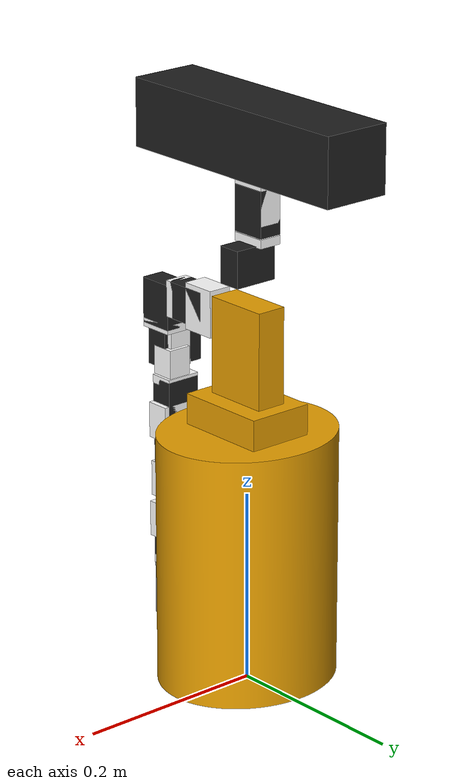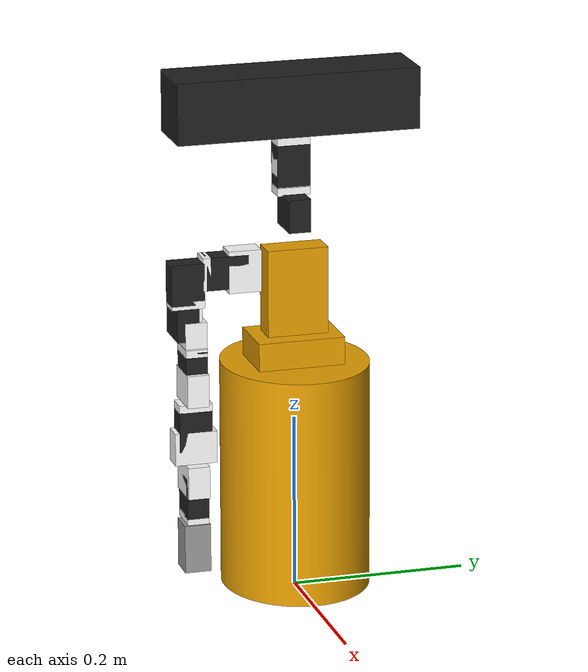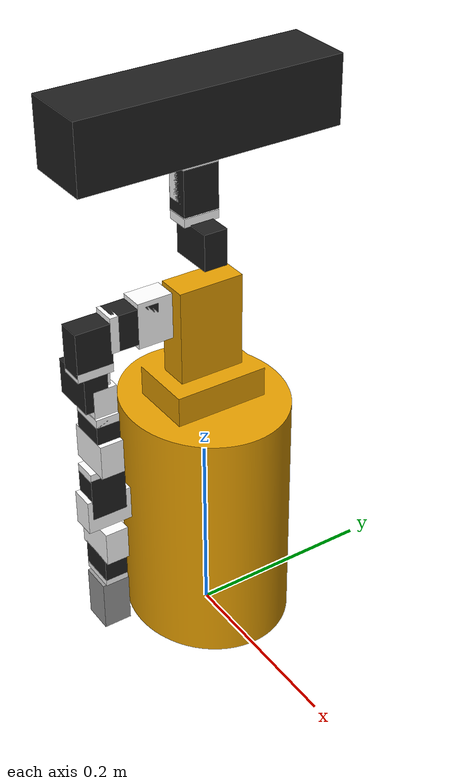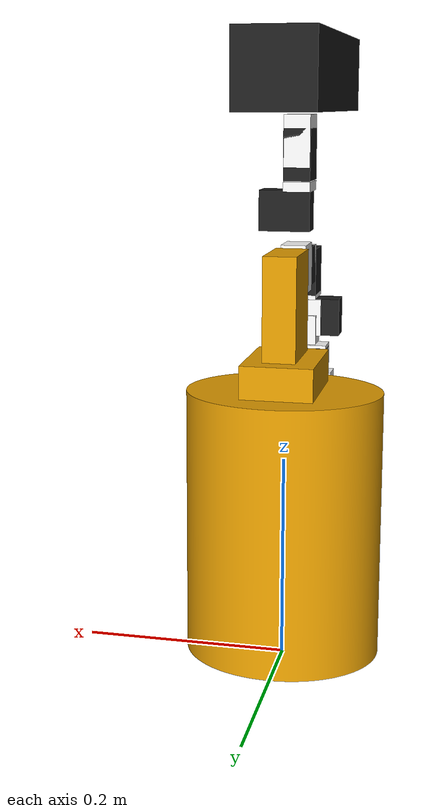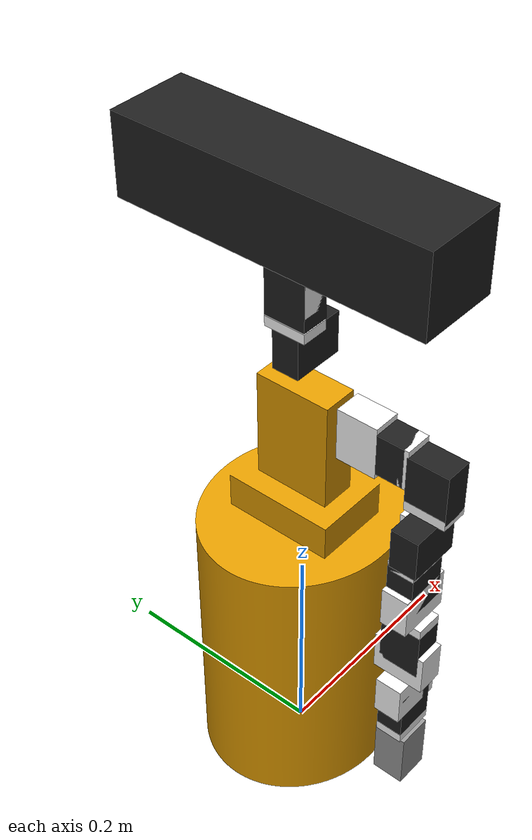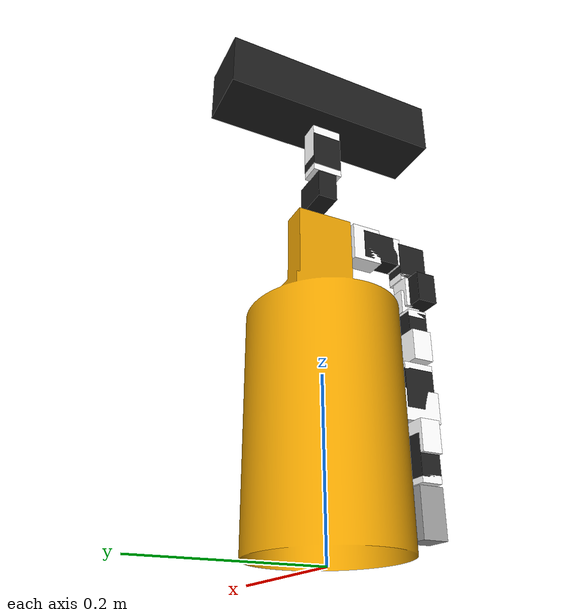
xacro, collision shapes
<?xml version="1.0"?>

<robot name="pedestal_pi_no_gripper" xmlns:xacro="http://ros.org/wiki/xacro">

  <property name="BASE_MESH_SCALE" value="1.0"/>
  <property name="BASE_MESH_COLLISION_SCALE" value="0.0254"/>

  <property name="MESH_SCALE" value="0.001"/>
  <property name="MESH_COLLISION_SCALE" value="0.00105"/>
  <property name="BASE_THICKNESS" value="0.004" />
  <property name="LOWER_BASE_HEIGHT" value="0.26" />
  <property name="LOWER_BASE_RADIUS" value="0.075" />

  <material name="Green">
    <color rgba="0.0 0.8 0.0 1.0"/>
  </material>

  <material name="OffWhite">
    <color rgba="0.8 0.8 0.8 0.9"/>
  </material>

  <material name="White">
    <color rgba="1.0 1.0 1.0 1.0"/>
  </material>

  <material name="DarkGray">
     <color rgba="0.3 0.3 0.3 1.0"/>
  </material>

  <material name="LightGray">
     <color rgba="0.6 0.6 0.6 1.0"/>
  </material>

  <material name="Red">
     <color rgba="1.0 0.0 0.0 0.5"/>
  </material>

  <xacro:include filename="$(find rbx2_description)/urdf/pedestal_pi/pedestal_pi_pan_tilt_head.urdf.xacro" />
  <xacro:include filename="$(find rbx2_description)/urdf/pedestal_pi/pedestal_pi_arm_paddle_hand.urdf.xacro" />

  <link name="base_link">
    <visual>
      <origin xyz="0 0 0" rpy="0 0 1.57" />
      <geometry>
          <mesh filename="package://rbx2_description/meshes/pedestal_pi/pedestal_pi.dae" scale="${BASE_MESH_SCALE} ${BASE_MESH_SCALE} ${BASE_MESH_SCALE}"/>
      </geometry>
    </visual>

    <collision>
      <origin xyz="0 0 0" rpy="0 0 1.57" />
       <geometry>
          <mesh filename="package://rbx2_description/meshes/pedestal_pi/pedestal_pi_collision.dae" scale="${BASE_MESH_COLLISION_SCALE} ${BASE_MESH_COLLISION_SCALE} ${BASE_MESH_COLLISION_SCALE}"/>
       </geometry>
     </collision>

   </link>

   <link name="base_footprint">
      <visual>
        <origin xyz="0 0 0" rpy="0 0 0" />
        <geometry>
          <box size="0.05 0.05 0.001" />
        </geometry>
        <material name="TransparentGreen" />
      </visual>
   </link>

   <joint name="base_joint" type="fixed">
     <origin xyz="0 0 ${BASE_THICKNESS}" rpy="0 0 0" />
     <parent link="base_footprint"/>
     <child link="base_link" />
   </joint>

   <!-- Attach the head -->
   <head name="head_base" parent="base" color="White">
     <origin xyz="-${AX12_DEPTH/4} 0 0.438" rpy="${PI/2} 0 ${PI/2}" />
   </head>

   <!-- Attach the right arm -->
   <arm side="right" reflect="-1" parent="base" color="White">
     <origin xyz="0 -0.068 ${AX12_HEIGHT + 0.3375}" rpy="0 0 1.57" />
   </arm>

</robot>

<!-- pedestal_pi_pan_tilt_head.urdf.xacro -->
<robot name="pan_tilt_head" xmlns:xacro="http://ros.org/wiki/xacro">

  <property name="camera_offset_x" value="0.0" />
  <property name="camera_offset_y" value="0.0" />
  <property name="camera_offset_z" value="0.0615" />

  <property name="camera_mesh_scale" value="1.0" />

  <xacro:include filename="$(find rbx2_description)/urdf/pi_robot/dynamixel_head_hardware.xacro" />
  <xacro:include filename="$(find rbx2_description)/urdf/pi_robot/kinect.urdf.xacro" />

  <macro name="head" params="parent name color *origin">
    <!-- head base joint -->
    <joint name="${name}_joint" type="fixed">
      <xacro:insert_block name="origin" />
      <parent link="${parent}_link"/>
      <child link="${name}_link" />
    </joint>
    <link name="${name}_link">
      <origin xyz="0 0 0" rpy="0 0 0" />
      <inertial>
        <mass value="0.00001" />
        <inertia ixx="1.0" ixy="0.0" ixz="0.0"
          iyy="1.0" iyz="0.0"
          izz="1.0" />
      </inertial>

      <visual>
        <origin xyz="0 0 0 " rpy="0 0 0" />
        <geometry>
           <cylinder length="0.00001" radius="0.01" />
        </geometry>
      </visual>

      <collision>
        <origin xyz="0 0 0 " rpy="0 0 0" />
        <geometry>
           <cylinder length="0.00001" radius="0.01" />
        </geometry>
      </collision>
    </link>

    <!-- head pan joint -->
    <dynamixel_AX12_fixed parent="head_base" name="head_pan_servo">
       <origin xyz="0 0 0" rpy="0 ${PI} 0" />
    </dynamixel_AX12_fixed>

    <bioloid_F3_head_revolute parent="head_pan_servo" name="head_pan_bracket" joint_name="head_pan" ulimit="2.9" llimit="-2.9" vlimit="1.571" color="${color}">
       <origin xyz="0 ${AX12_WIDTH/2 + 0.005} 0" rpy="${-PI/2} ${PI/2} ${PI}" />
    </bioloid_F3_head_revolute>

    <!--head tilt joint -->
    <dynamixel_AX12_fixed parent="head_pan_bracket" name="head_tilt_servo">
       <origin xyz="0 0 ${-AX12_HEIGHT-F10_HEIGHT+0.001}" rpy="0 ${PI} ${PI}"/>
    </dynamixel_AX12_fixed>

    <bioloid_F2_head_revolute parent="head_tilt_servo" name="head_tilt_bracket" joint_name="head_tilt" ulimit="2.9" llimit="-2.9" vlimit="1.571" color="${color}" >
       <origin xyz="0 0 0" rpy="0 0 0" />
    </bioloid_F2_head_revolute>

   <!-- Attach the camera -->
   <camera name="camera" parent="head_tilt_bracket" color="Black">
      <origin xyz="${camera_offset_x} ${camera_offset_y} ${camera_offset_z}" rpy="0 0 0" />
   </camera>

 </macro>

</robot>

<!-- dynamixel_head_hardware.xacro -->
<robot name="head_hardware" xmlns:xacro="http://ros.org/wiki/xacro">

  <property name="PI" value="3.14159"/>
  <property name="DYNAMIXEL_MESH_SCALE" value="0.001"/>

  <property name="F10_HEIGHT" value="0.004"/>

  <property name="F4_WIDTH" value="0.0480"/>
  <property name="F4_HEIGHT" value="0.0625"/>
  <property name="F4_DEPTH" value="0.0245"/>

  <property name="F2_DEPTH" value="0.0245"/>
  <property name="F2_WIDTH" value="0.0480"/>
  <property name="F2_HEIGHT" value="0.0380"/>

  <property name="F3_WIDTH" value="0.038"/>
  <property name="F3_HEIGHT" value="0.009"/>
  <property name="F3_DEPTH" value="0.025"/>

  <property name="AX12_HEIGHT" value="0.0385"/>
  <property name="AX12_WIDTH" value="0.035"/>
  <property name="AX12_DEPTH" value="0.049"/>

  <macro name="bioloid_F10_fixed" params="parent name color *origin">
    <joint name="${name}_joint" type="fixed">
      <xacro:insert_block name="origin"/>
      <parent link="${parent}_link"/>
      <child link="${name}_link" />
    </joint>

    <link name="${name}_link">
      <inertial>
        <mass value="0.00001" />
        <origin xyz="0 0 0" />
        <inertia ixx="1.0" ixy="0.0" ixz="0.0"
          iyy="1.0" iyz="0.0"
          izz="1.0" />
      </inertial>

      <visual>
        <origin xyz="0 0 0 " rpy="0 0 0" />
        <geometry>
          <mesh filename="package://rbx2_description/meshes/F10.stl" scale="${DYNAMIXEL_MESH_SCALE} ${DYNAMIXEL_MESH_SCALE} ${DYNAMIXEL_MESH_SCALE}"/>
        </geometry>
        <material name="${color}"/>
      </visual>

      <collision>
        <origin xyz="0 0 0" rpy="0 0 0" />
        <geometry>
          <box size="0.025 0.038 0.004"/>
        </geometry>
      </collision>
    </link>
  </macro>

  <macro name="bioloid_F3_fixed" params="parent name color *origin">
    <joint name="${name}_joint" type="fixed">
      <xacro:insert_block name="origin"/>
      <parent link="${parent}_link"/>
      <child link="${name}_link" />
    </joint>

    <link name="${name}_link">
      <inertial>
        <mass value="0.00001" />
        <origin xyz="0 0 0" />
        <inertia ixx="1.0" ixy="0.0" ixz="0.0"
          iyy="1.0" iyz="0.0"
          izz="1.0" />
      </inertial>

      <visual>
        <origin xyz="0 0 0 " rpy="0 0 0" />
        <geometry>
          <mesh filename="package://rbx2_description/meshes/F3.stl" scale="${DYNAMIXEL_MESH_SCALE} ${DYNAMIXEL_MESH_SCALE} ${DYNAMIXEL_MESH_SCALE}"/>
        </geometry>
        <material name="${color}"/>
      </visual>

      <collision>
        <origin xyz="0 0 0" rpy="0 0 0" />
        <geometry>
          <box size="${F3_WIDTH} ${F3_HEIGHT} ${F3_DEPTH}"/>
        </geometry>
      </collision>
    </link>
  </macro>

  <macro name="dynamixel_AX12_fixed" params="parent name *origin">
    <joint name="${name}_joint" type="fixed">
      <xacro:insert_block name="origin" />
      <parent link="${parent}_link"/>
      <child link="${name}_link" />
    </joint>

    <link name="${name}_link">
      <inertial>
        <mass value="0.00001" />
        <origin xyz="0 0 0" />
        <inertia ixx="1.0" ixy="0.0" ixz="0.0"
          iyy="1.0" iyz="0.0"
          izz="1.0" />
      </inertial>

      <visual>
        <origin xyz="0 0 0 " rpy="0 0 0" />
        <geometry>
          <mesh filename="package://rbx2_description/meshes/ax12.stl" scale="${DYNAMIXEL_MESH_SCALE} ${DYNAMIXEL_MESH_SCALE} ${DYNAMIXEL_MESH_SCALE}"/>
        </geometry>
        <material name="Black"/>
      </visual>

      <collision>
        <origin xyz="0 0 -0.01241" rpy="0 0 0" />
        <geometry>
          <box size="${AX12_HEIGHT} ${AX12_WIDTH} ${AX12_DEPTH}"/>
        </geometry>
      </collision>
    </link>
  </macro>

  <macro name="bioloid_F3_head_revolute" params="parent name joint_name ulimit llimit vlimit color *origin">
    <joint name="${joint_name}_joint" type="revolute">
      <xacro:insert_block name="origin" />
      <parent link="${parent}_link"/>
       <axis xyz="0 0 -1"/>
       <limit lower="${llimit}" upper="${ulimit}" velocity="${vlimit}" effort="1.0" />
      <child link="${name}_link" />
    </joint>

    <link name="${name}_link">
      <inertial>
        <mass value="0.00001" />
        <origin xyz="0 0 0" />
        <inertia ixx="1.0" ixy="0.0" ixz="0.0"
          iyy="1.0" iyz="0.0"
          izz="1.0" />
      </inertial>

      <visual>
        <origin xyz="0 0 0 " rpy="0 0 0" />
        <geometry>
          <mesh filename="package://rbx2_description/meshes/F3.stl" scale="${DYNAMIXEL_MESH_SCALE} ${DYNAMIXEL_MESH_SCALE} ${DYNAMIXEL_MESH_SCALE}"/>
        </geometry>
        <material name="${color}"/>
      </visual>

      <collision>
        <origin xyz="0 0 0" rpy="0 0 0" />
        <geometry>
           <box size="${F3_DEPTH} ${F3_WIDTH} ${F3_HEIGHT}"/>
        </geometry>
      </collision>
    </link>
  </macro>

  <macro name="bioloid_F4_head_revolute" params="parent name joint_name ulimit llimit vlimit color *origin">
    <joint name="${joint_name}_joint" type="revolute">
      <xacro:insert_block name="origin"/>
      <parent link="${parent}_link"/>
      <axis xyz="0 -1 0"/>
      <limit lower="${llimit}" upper="${ulimit}" velocity="${vlimit}" effort="1.0" />
      <child link="${name}_link" />
    </joint>

    <link name="${name}_link">
      <inertial>
        <mass value="0.00001" />
        <origin xyz="0 0 0" />
        <inertia ixx="1.0" ixy="0.0" ixz="0.0"
          iyy="1.0" iyz="0.0"
          izz="1.0" />
      </inertial>

      <visual>
        <origin xyz="0 0 0 " rpy="0 0 0" />
        <geometry>
          <mesh filename="package://rbx2_description/meshes/F4.stl" scale="${DYNAMIXEL_MESH_SCALE} ${DYNAMIXEL_MESH_SCALE} ${DYNAMIXEL_MESH_SCALE}"/>
        </geometry>
        <material name="${color}"/>
      </visual>

      <collision>
        <origin xyz="0 0 0" rpy="0 0 0" />
        <geometry>
          <box size="${F4_WIDTH} ${F4_HEIGHT} ${F4_DEPTH}"/>
        </geometry>
      </collision>
    </link>
  </macro>

  <macro name="bioloid_F2_head_revolute" params="parent name joint_name ulimit llimit vlimit color *origin">
    <joint name="${joint_name}_joint" type="revolute">
      <xacro:insert_block name="origin" />
      <parent link="${parent}_link"/>
      <axis xyz="0 1 0"/>
      <limit lower="${llimit}" upper="${ulimit}" velocity="${vlimit}" effort="1.0" />
      <child link="${name}_link" />
    </joint>

    <link name="${name}_link">
      <inertial>
        <mass value="0.00001" />
        <origin xyz="0 0 0" />
        <inertia ixx="1.0" ixy="0.0" ixz="0.0"
          iyy="1.0" iyz="0.0"
          izz="1.0" />
      </inertial>

      <visual>
        <origin xyz="0 0 0 " rpy="0 0 0" />
        <geometry>
          <mesh filename="package://rbx2_description/meshes/F2.stl" scale="${DYNAMIXEL_MESH_SCALE} ${DYNAMIXEL_MESH_SCALE} ${DYNAMIXEL_MESH_SCALE}"/>
        </geometry>
        <material name="${color}"/>
      </visual>

      <collision>
        <origin xyz="0 0 0" rpy="0 0 0" />
        <geometry>
          <box size="${F2_DEPTH} ${F2_HEIGHT} ${F2_WIDTH}"/>
        </geometry>
      </collision>
    </link>
  </macro>

</robot>

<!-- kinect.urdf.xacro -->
<robot name="kinect" xmlns:xacro="http://ros.org/wiki/xacro">

   <!-- Define a number of dimensions using properties -->
   <property name="kinect_size_x" value="0.07271" />
   <property name="kinect_size_y" value="0.27794" />
   <property name="kinect_size_z" value="0.070" />

   <property name="camera_mesh_scale" value="1.0" />

   <property name="PI" value="3.1415" />

   <!-- Define a camera link for a Kinect -->
   <macro name="camera" params="parent name color *origin">
      <joint name="${parent}_${name}_joint" type="fixed">
         <xacro:insert_block name="origin" />
         <parent link="${parent}_link"/>
         <child link="${name}_link"/>
      </joint>
      <link name="${name}_link">
         <visual>
            <origin xyz="0 0 0" rpy="0 0 ${PI/2}" />
            <geometry>
               <mesh filename="package://rbx2_description/meshes/kinect.dae" scale="${camera_mesh_scale} ${camera_mesh_scale} ${camera_mesh_scale}" />
            </geometry>
            <material name="${color}" />
         </visual>
         <collision>
           <origin xyz="0 0 0" rpy="0 0 0" />
           <geometry>
              <box size="${kinect_size_x} ${kinect_size_y} ${kinect_size_z}"/>
           </geometry>
         </collision>
      </link>

      <joint name="camera_depth_joint" type="fixed">
         <origin xyz="0 0.0125 0.015" rpy="0 0 0" />
          <parent link="camera_link" />
          <child link="camera_depth_frame" />
      </joint>

      <link name="camera_depth_frame">
      <inertial>
         <mass value="0.000001" />
         <origin xyz="0 0 0" />
         <inertia ixx="0.0001" ixy="0.0" ixz="0.0"
            iyy="0.0001" iyz="0.0"
            izz="0.0001" />
         </inertial>
      </link>

      <joint name="camera_depth_optical_joint" type="fixed">
         <origin xyz="0 0 0" rpy="${-PI/2} 0 ${-PI/2}" />
         <parent link="camera_depth_frame" />
         <child link="camera_depth_optical_frame" />
      </joint>

      <link name="camera_depth_optical_frame">
         <inertial>
            <mass value="0.000001" />
            <origin xyz="0 0 0" />
            <inertia ixx="0.0001" ixy="0.0" ixz="0.0"
               iyy="0.0001" iyz="0.0"
               izz="0.0001" />
         </inertial>
      </link>

      <joint name="camera_rgb_joint" type="fixed">
         <origin xyz="0 -0.0125 0.015" rpy="0 0 0" />
         <parent link="camera_link" />
         <child link="camera_rgb_frame" />
      </joint>

      <link name="camera_rgb_frame">
         <inertial>
         <mass value="0.000001" />
         <origin xyz="0 0 0" />
         <inertia ixx="0.0001" ixy="0.0" ixz="0.0"
            iyy="0.0001" iyz="0.0"
            izz="0.0001" />
         </inertial>
      </link>

      <joint name="camera_rgb_optical_joint" type="fixed">
         <origin xyz="0 0 0" rpy="${-PI/2} 0 ${-PI/2}" />
         <parent link="camera_rgb_frame" />
         <child link="camera_rgb_optical_frame" />
      </joint>

      <link name="camera_rgb_optical_frame">
         <inertial>
            <mass value="0.000001" />
            <origin xyz="0 0 0" />
            <inertia ixx="0.0001" ixy="0.0" ixz="0.0"
               iyy="0.0001" iyz="0.0"
               izz="0.0001" />
         </inertial>
      </link>

   </macro>

</robot>

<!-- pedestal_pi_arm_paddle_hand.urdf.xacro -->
<robot name="arm_paddle_hand" xmlns:xacro="http://ros.org/wiki/xacro">

  <xacro:include filename="$(find rbx2_description)/urdf/pi_robot/dynamixel_arm_hardware.xacro" />

  <macro name="arm" params="side reflect parent color *origin">
    <link name="${side}_arm_base_link" />
    <joint name="${side}_arm_base_joint" type="fixed">
      <xacro:insert_block name="origin" />
      <parent link="${parent}_link"/>
      <child link="${side}_arm_base_link" />
    </joint>

    <!-- shoulder pan  -->
    <bioloid_F2_fixed parent="${side}_arm_base" name="${side}_arm_shoulder_F2_0" color="${color}">
      <origin xyz="0 0 0" rpy="${PI/2} 0 ${PI/2}" />
    </bioloid_F2_fixed>

    <dynamixel_AX12_revolute parent="${side}_arm_shoulder_F2_0" name="${side}_arm_shoulder_pan" vlimit="1.571" llimit="-1.57" ulimit="1.57">
      <origin xyz="0 0 0" rpy="0 0 0"/>
      <axis xyz="0 1 0"/>
    </dynamixel_AX12_revolute>

    <!-- shoulder lift -->
    <bioloid_F3_fixed parent="${side}_arm_shoulder_pan" name="${side}_arm_shoulder_F3_0" color="${color}">
      <origin xyz="0 0 ${-AX12_HEIGHT - 0.002}" rpy="0 ${PI} 0" />
    </bioloid_F3_fixed>

    <dynamixel_AX12_revolute parent="${side}_arm_shoulder_F3_0" name="${side}_arm_shoulder_lift" vlimit="1.571" llimit="-3.14" ulimit="3.14">
      <origin xyz="0 0.002 ${(AX12_WIDTH)/2}" rpy="${PI/2} ${PI} ${PI}" />
      <axis xyz="0 1 0"/>
    </dynamixel_AX12_revolute>

    <!-- shoulder roll -->
    <bioloid_F3_fixed parent="${side}_arm_shoulder_lift" name="${side}_arm_shoulder_F3_1" color="${color}">
      <origin xyz="0 0 ${-AX12_HEIGHT - 0.002}" rpy="${PI} 0 0" />
    </bioloid_F3_fixed>

    <dynamixel_AX12_revolute parent="${side}_arm_shoulder_F3_1" name="${side}_arm_shoulder_roll" vlimit="1.571" llimit="-3.14" ulimit="3.14">
      <origin xyz="0 0 ${AX12_HEIGHT/2}" rpy="${-PI/2} 0 ${-PI/2}" />
      <axis xyz="0 1 0"/>
    </dynamixel_AX12_revolute>

    <bioloid_F3_fixed parent="${side}_arm_shoulder_roll" name="${side}_arm_shoulder_roll_F3_0" color="${color}">
      <origin xyz="${AX12_WIDTH/2} 0 ${-(AX12_DEPTH - F3_WIDTH)/2}" rpy="0 ${PI/2} 0" />
    </bioloid_F3_fixed>

    <bioloid_F9_fixed parent="${side}_arm_shoulder_roll_F3_0" name="${side}_arm_shoulder_roll_F9_0" color="${color}">
      <origin xyz="0 ${-F9_DEPTH/2 - 0.000} ${-F9_DEPTH/2 + 0.004}" rpy="0 ${PI/2} 0" />
    </bioloid_F9_fixed>

    <!-- elbow flex -->
    <bioloid_F3_fixed parent="${side}_arm_shoulder_roll_F9_0" name="${side}_arm_elbow_F3_0" color="${color}">
      <origin xyz="0 ${-AX12_HEIGHT/2 + 0.0035} 0" rpy="${PI/2} ${PI} ${PI}" />
    </bioloid_F3_fixed>

    <dynamixel_AX12_fixed parent="${side}_arm_elbow_F3_0" name="${side}_arm_elbow_flex_servo">
      <origin xyz="0 0 ${-(AX12_WIDTH + F3_HEIGHT/2)}" rpy="0 ${PI} 0" />
    </dynamixel_AX12_fixed>

    <bioloid_F2_revolute parent="${side}_arm_elbow_flex_servo" name="${side}_arm_elbow_flex" color="${color}" vlimit="1.571" llimit="-1.75" ulimit="1.75">
      <origin xyz="0 0 0" rpy="0 0 0" />
      <axis xyz="0 1 0" />
    </bioloid_F2_revolute>

    <!-- forearm flex -->
    <bioloid_F3_fixed parent="${side}_arm_elbow_flex" name="${side}_arm_forearm_F3_0" color="${color}">
      <origin xyz="0 0 ${AX12_HEIGHT/2 + F3_HEIGHT - 0.0015}" rpy="${PI} 0 ${PI/2}" />
    </bioloid_F3_fixed>

    <dynamixel_AX12_fixed parent="${side}_arm_forearm_F3_0" name="${side}_arm_forearm_flex_servo">
      <origin xyz="0 0 ${-(AX12_HEIGHT/2 + F2_DEPTH)}" rpy="${PI} 0 0" />
    </dynamixel_AX12_fixed>

    <bioloid_F2_revolute parent="${side}_arm_forearm_flex_servo" name="${side}_arm_forearm_flex" color="${color}" vlimit="1.571" llimit="-1.75" ulimit="1.75">
      <origin xyz="0 0 0" rpy="0 0 0" />
      <axis xyz="0 1 0" />
    </bioloid_F2_revolute>

    <bioloid_F2_fixed parent="${side}_arm_forearm_flex" name="${side}_arm_forearm_F2_0" color="${color}">
      <origin xyz="0 0 ${AX12_HEIGHT/2 + F2_HEIGHT - 0.004}" rpy="0 ${PI} ${PI/2}" />
    </bioloid_F2_fixed>

    <!-- wrist flex -->
    <dynamixel_AX12_revolute parent="${side}_arm_forearm_F2_0" name="${side}_arm_wrist_flex" vlimit="1.571" llimit="-1.75" ulimit="1.75">
      <origin xyz="0 0 0" rpy="0 0 0" />
      <axis xyz="0 1 0"/>
    </dynamixel_AX12_revolute>

    <bioloid_F3_fixed parent="${side}_arm_wrist_flex" name="${side}_hand_attach" color="${color}">
      <origin xyz="0 0 ${-AX12_HEIGHT - F3_HEIGHT/2}" rpy="${PI} 0 0" />
    </bioloid_F3_fixed>

    <!-- paddle hand -->
    <joint name="${side}_hand_joint" type="fixed">
       <origin xyz="0 0 0.0021" rpy="${PI/2} 0 0"/>
       <parent link="${side}_hand_attach_link"/>
       <child link="${side}_hand_link"/>
     </joint>

    <link name="${side}_hand_link">
       <inertial>
         <mass value="0.00001"/>
         <origin xyz="0 0 0"/>
         <inertia ixx="1.0" ixy="0.0" ixz="0.0" iyy="1.0" iyz="0.0" izz="1.0"/>
       </inertial>

       <visual>
         <origin xyz="0 0 0" rpy="0 0 0" />
         <geometry>
            <mesh filename="package://rbx2_description/meshes/F11.stl" scale="${DYNAMIXEL_MESH_SCALE} ${DYNAMIXEL_MESH_SCALE} ${DYNAMIXEL_MESH_SCALE}"/>
         </geometry>
         <material name="Grey">
           <color rgba="0.6 0.6 0.6 1.0"/>
         </material>
       </visual>

       <collision>
          <origin xyz="0 0.028 0" rpy="0 0 0"/>
          <geometry>
             <box size="0.030 0.056 0.032"/>
          </geometry>
       </collision>
     </link>

    <!-- Planning link and joint for the right hand -->
    <joint name="${side}_hand_planning_joint" type="fixed">
      <axis xyz="0 0 1" />
      <origin xyz="0 0.02 0" rpy="${PI} 0 ${PI/2}"/>
      <parent link="${side}_hand_link"/>
      <child link="${side}_hand_planning_link"/>
    </joint>

    <link name="${side}_hand_planning_link">
      <visual>
        <origin xyz="0 0 0" rpy="0 0 0"/>
        <geometry>
           <box size="0.001 0.0005 0.0005"/>
        </geometry>
      </visual>
    </link>

  </macro>

</robot>

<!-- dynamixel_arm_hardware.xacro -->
<robot name="arm_hardware" xmlns:xacro="http://ros.org/wiki/xacro">

  <property name="PI" value="3.14159"/>
  <property name="DYNAMIXEL_MESH_SCALE" value="0.001"/>

  <property name="F2_WIDTH" value="0.0480"/>
  <property name="F2_HEIGHT" value="0.0380"/>
  <property name="F2_DEPTH" value="0.0245"/>

  <property name="F3_WIDTH" value="0.038"/>
  <property name="F3_HEIGHT" value="0.009"/>
  <property name="F3_DEPTH" value="0.025"/>

  <property name="F4_WIDTH" value="0.0480"/>
  <property name="F4_HEIGHT" value="0.0625"/>
  <property name="F4_DEPTH" value="0.0245"/>

  <property name="F9_DEPTH" value="0.025"/>

  <property name="F10_HEIGHT" value="0.004"/>
  <property name="F10_LENGTH" value="0.038"/>

  <property name="AX12_HEIGHT" value="0.0385"/>
  <property name="AX12_WIDTH" value="0.035"/>
  <property name="AX12_DEPTH" value="0.049"/>

  <property name="ARM_MESH_EXT" value="stl"/>

  <macro name="bioloid_F10_fixed" params="parent name color *origin">
    <joint name="${name}_joint" type="fixed">
      <xacro:insert_block name="origin" />
      <parent link="${parent}_link"/>
      <child link="${name}_link" />
    </joint>

    <link name="${name}_link">
      <inertial>
        <mass value="0.00001" />
        <origin xyz="0 0 0" />
        <inertia ixx="1.0" ixy="0.0" ixz="0.0"
          iyy="1.0" iyz="0.0"
          izz="1.0" />
      </inertial>

      <visual>
        <origin xyz=" 0 0 0 " rpy="0 0 0" />
        <geometry>
          <mesh filename="package://rbx2_description/meshes/F10.stl" scale="${DYNAMIXEL_MESH_SCALE} ${DYNAMIXEL_MESH_SCALE} ${DYNAMIXEL_MESH_SCALE}"/>
        </geometry>
        <material name="${color}"/>
      </visual>

      <collision>
        <origin xyz="0.0 0.0 0.0" rpy="0 0 0" />
        <geometry>
          <box size="0.025 0.038 0.004"/>
        </geometry>
      </collision>
    </link>
  </macro>

  <macro name="bioloid_F10_revolute" params="parent name color llimit ulimit vlimit *origin *axis">
    <joint name="${name}_joint" type="revolute">
      <xacro:insert_block name="origin" />
      <xacro:insert_block name="axis" />
      <limit effort="1.0" velocity="${vlimit}" lower="${llimit}" upper="${ulimit}" />
      <parent link="${parent}_link"/>
      <child link="${name}_link" />
    </joint>

    <link name="${name}_link">
      <inertial>
        <mass value="0.00001" />
        <origin xyz="0 0 0" />
        <inertia ixx="1.0" ixy="0.0" ixz="0.0"
          iyy="1.0" iyz="0.0"
          izz="1.0" />
      </inertial>

      <visual>
        <origin xyz=" 0 0 0 " rpy="0 0 0" />
        <geometry>
          <mesh filename="package://rbx2_description/meshes/F10.stl" scale="${DYNAMIXEL_MESH_SCALE} ${DYNAMIXEL_MESH_SCALE} ${DYNAMIXEL_MESH_SCALE}"/>
        </geometry>
        <material name="${color}"/>
      </visual>

      <collision>
        <origin xyz="0.0 0.0 0.0" rpy="0 0 0" />
        <geometry>
          <box size="0.025 0.038 0.004"/>
        </geometry>
      </collision>
    </link>
  </macro>

  <macro name="bioloid_F2_fixed" params="parent name color *origin">
    <joint name="${name}_joint" type="fixed">
      <xacro:insert_block name="origin" />
      <parent link="${parent}_link"/>
      <child link="${name}_link" />
    </joint>

    <link name="${name}_link">
      <inertial>
        <mass value="0.00001" />
        <origin xyz="0 0 0" />
        <inertia ixx="1.0" ixy="0.0" ixz="0.0"
          iyy="1.0" iyz="0.0"
          izz="1.0" />
      </inertial>

      <visual>
        <origin xyz=" 0 0 0 " rpy="0 0 0" />
        <geometry>
          <mesh filename="package://rbx2_description/meshes/F2.stl" scale="${DYNAMIXEL_MESH_SCALE} ${DYNAMIXEL_MESH_SCALE} ${DYNAMIXEL_MESH_SCALE}"/>
        </geometry>
        <material name="${color}"/>
      </visual>

      <collision>
        <origin xyz="0.0 0.0 0.00775" rpy="0 0 0" />
        <geometry>
          <box size="0.025 0.0485 0.0375"/>
        </geometry>
      </collision>
    </link>
  </macro>

  <macro name="finger" params="parent name color *origin">
    <joint name="${name}_joint" type="fixed">
      <xacro:insert_block name="origin" />
      <parent link="${parent}_link"/>
      <child link="${name}_link" />
    </joint>

    <link name="${name}_link">
      <inertial>
        <mass value="0.00001" />
        <origin xyz="0 0 0" />
        <inertia ixx="1.0" ixy="0.0" ixz="0.0"
          iyy="1.0" iyz="0.0"
          izz="1.0" />
      </inertial>

      <visual>
        <origin xyz=" 0 0 0 " rpy="0 0 0" />
        <geometry>
          <mesh filename="package://rbx2_description/meshes/finger.stl" scale="${DYNAMIXEL_MESH_SCALE} ${DYNAMIXEL_MESH_SCALE} ${DYNAMIXEL_MESH_SCALE}"/>
        </geometry>
        <material name="${color}"/>
      </visual>

      <collision>
        <origin xyz="0.02645 0.0 -0.00655" rpy="0 0 0" />
        <geometry>
          <box size="0.0783 0.03801 0.0193"/>
        </geometry>
      </collision>
    </link>
  </macro>

  <macro name="bioloid_F3_fixed" params="parent name color *origin">
    <joint name="${name}_joint" type="fixed">
      <xacro:insert_block name="origin" />
      <parent link="${parent}_link"/>
      <child link="${name}_link" />
    </joint>

    <link name="${name}_link">
      <inertial>
        <mass value="0.00001" />
        <origin xyz="0 0 0" />
        <inertia ixx="1.0" ixy="0.0" ixz="0.0"
          iyy="1.0" iyz="0.0"
          izz="1.0" />
      </inertial>

      <visual>
        <origin xyz=" 0 0 0 " rpy="0 0 0" />
        <geometry>
          <mesh filename="package://rbx2_description/meshes/F3.stl" scale="${DYNAMIXEL_MESH_SCALE} ${DYNAMIXEL_MESH_SCALE} ${DYNAMIXEL_MESH_SCALE}"/>
        </geometry>
        <material name="${color}"/>
      </visual>

      <collision>
        <origin xyz="0.0 0.0 -0.0045" rpy="0 0 0" />
        <geometry>
          <box size="0.025 0.038 0.009"/>
        </geometry>
      </collision>
    </link>
  </macro>

  <macro name="bioloid_F9_fixed" params="parent name color *origin">
    <joint name="${name}_joint" type="fixed">
      <xacro:insert_block name="origin" />
      <parent link="${parent}_link"/>
      <child link="${name}_link" />
    </joint>

    <link name="${name}_link">
      <inertial>
        <mass value="0.00001" />
        <origin xyz="0 0 0" />
        <inertia ixx="1.0" ixy="0.0" ixz="0.0"
          iyy="1.0" iyz="0.0"
          izz="1.0" />
      </inertial>

      <visual>
        <origin xyz=" 0 0 0 " rpy="0 0 0" />
        <geometry>
          <mesh filename="package://rbx2_description/meshes/F9.stl" scale="${DYNAMIXEL_MESH_SCALE} ${DYNAMIXEL_MESH_SCALE} ${DYNAMIXEL_MESH_SCALE}"/>
        </geometry>
        <material name="${color}"/>
      </visual>

      <collision>
        <origin xyz="0.0 0.0 -0.0045" rpy="0 0 0" />
        <geometry>
          <box size="0.025 0.030 0.025"/>
        </geometry>
      </collision>
    </link>
  </macro>

  <macro name="bioloid_F11_fixed" params="parent name color *origin">
    <joint name="${name}_joint" type="fixed">
      <xacro:insert_block name="origin" />
      <parent link="${parent}_link"/>
      <child link="${name}_link" />
    </joint>

    <link name="${name}_link">
      <inertial>
        <mass value="0.00001" />
        <origin xyz="0 0 0" />
        <inertia ixx="1.0" ixy="0.0" ixz="0.0"
          iyy="1.0" iyz="0.0"
          izz="1.0" />
      </inertial>

      <visual>
        <origin xyz=" 0 0 0 " rpy="0 0 0" />
        <geometry>
          <mesh filename="package://rbx2_description/meshes/F11.stl" scale="${DYNAMIXEL_MESH_SCALE} ${DYNAMIXEL_MESH_SCALE} ${DYNAMIXEL_MESH_SCALE}"/>
        </geometry>
        <material name="${color}"/>
      </visual>

      <collision>
        <origin xyz="0 0.028 0" rpy="0 0 0" />
        <geometry>
          <box size="0.030 0.056 0.032"/>
        </geometry>
      </collision>
    </link>
  </macro>

  <macro name="dynamixel_AX12_fixed" params="parent name *origin">
    <joint name="${name}_joint" type="fixed">
      <xacro:insert_block name="origin" />
      <parent link="${parent}_link"/>
      <child link="${name}_link" />
    </joint>

    <link name="${name}_link">
      <inertial>
        <mass value="0.00001" />
        <origin xyz="0 0 0" />
        <inertia ixx="1.0" ixy="0.0" ixz="0.0"
          iyy="1.0" iyz="0.0"
          izz="1.0" />
      </inertial>

      <visual>
        <origin xyz=" 0 0 0 " rpy="0 0 0" />
        <geometry>
          <mesh filename="package://rbx2_description/meshes/ax12.${ARM_MESH_EXT}" scale="${DYNAMIXEL_MESH_SCALE} ${DYNAMIXEL_MESH_SCALE} ${DYNAMIXEL_MESH_SCALE}"/>
        </geometry>
        <material name="Black"/>
      </visual>

      <collision>
        <origin xyz="0.0 0.0 -0.01241" rpy="0 0 0" />
        <geometry>
          <box size="0.025 0.038 0.04762"/>
        </geometry>
      </collision>
    </link>
  </macro>

  <macro name="dynamixel_AX12_revolute" params="parent name llimit ulimit vlimit *origin *axis">
    <joint name="${name}_joint" type="revolute">
      <xacro:insert_block name="origin" />
      <xacro:insert_block name="axis" />
      <limit effort="1.0" velocity="${vlimit}" lower="${llimit}" upper="${ulimit}" />
      <parent link="${parent}_link"/>
      <child link="${name}_link" />
    </joint>

    <link name="${name}_link">
      <inertial>
        <mass value="0.00001" />
        <origin xyz="0 0 0" />
        <inertia ixx="1.0" ixy="0.0" ixz="0.0"
          iyy="1.0" iyz="0.0"
          izz="1.0" />
      </inertial>

      <visual>
        <origin xyz=" 0 0 0 " rpy="0 0 0" />
        <geometry>
          <mesh filename="package://rbx2_description/meshes/ax12.${ARM_MESH_EXT}" scale="${DYNAMIXEL_MESH_SCALE} ${DYNAMIXEL_MESH_SCALE} ${DYNAMIXEL_MESH_SCALE}"/>
        </geometry>
         <material name="Black"/>
      </visual>

      <collision>
        <origin xyz="0.0 0.0 -0.01241" rpy="0 0 0" />
        <geometry>
          <box size="0.025 0.038 0.04762"/>
        </geometry>
      </collision>
    </link>
  </macro>

  <macro name="bioloid_F3_revolute" params="parent name color llimit ulimit vlimit *origin *axis">
    <joint name="${name}_joint" type="revolute">
      <xacro:insert_block name="origin" />
      <xacro:insert_block name="axis" />
      <limit effort="1.0" velocity="${vlimit}" lower="${llimit}" upper="${ulimit}" />
      <parent link="${parent}_link"/>
      <child link="${name}_link" />
    </joint>

    <link name="${name}_link">
      <inertial>
        <mass value="0.00001" />
        <origin xyz="0 0 0" />
        <inertia ixx="1.0" ixy="0.0" ixz="0.0"
          iyy="1.0" iyz="0.0"
          izz="1.0" />
      </inertial>

      <visual>
        <origin xyz=" 0 0 0 " rpy="0 0 0" />
        <geometry>
          <mesh filename="package://rbx2_description/meshes/F3.stl" scale="${DYNAMIXEL_MESH_SCALE} ${DYNAMIXEL_MESH_SCALE} ${DYNAMIXEL_MESH_SCALE}"/>
        </geometry>
        <material name="${color}"/>
      </visual>

      <collision>
        <origin xyz="0.0 0.0 -0.0045" rpy="0 0 0" />
        <geometry>
          <box size="0.025 0.038 0.009"/>
        </geometry>
      </collision>
    </link>
  </macro>

  <macro name="bioloid_F2_revolute" params="parent name color llimit ulimit vlimit *origin *axis">
    <joint name="${name}_joint" type="revolute">
      <xacro:insert_block name="origin" />
      <xacro:insert_block name="axis" />
      <limit effort="1.0" velocity="${vlimit}" lower="${llimit}" upper="${ulimit}" />
      <parent link="${parent}_link"/>
      <child link="${name}_link" />
    </joint>

    <link name="${name}_link">
      <inertial>
        <mass value="0.00001" />
        <origin xyz="0 0 0" />
        <inertia ixx="1.0" ixy="0.0" ixz="0.0"
          iyy="1.0" iyz="0.0"
          izz="1.0" />
      </inertial>

      <visual>
        <origin xyz=" 0 0 0 " rpy="0 0 0" />
        <geometry>
          <mesh filename="package://rbx2_description/meshes/F2.stl" scale="${DYNAMIXEL_MESH_SCALE} ${DYNAMIXEL_MESH_SCALE} ${DYNAMIXEL_MESH_SCALE}"/>
        </geometry>
        <material name="${color}"/>
      </visual>

      <collision>
        <origin xyz="0.0 0.0 0.00775" rpy="0 0 0" />
        <geometry>
          <box size="0.025 0.0485 0.0375"/>
        </geometry>
      </collision>
    </link>
  </macro>

  <macro name="bioloid_F4_revolute" params="parent name color llimit ulimit vlimit *origin *axis">
    <joint name="${name}_joint" type="revolute">
      <xacro:insert_block name="origin" />
      <xacro:insert_block name="axis" />
      <limit effort="1.0" velocity="${vlimit}" lower="${llimit}" upper="${ulimit}" />
      <parent link="${parent}_link"/>
      <child link="${name}_link" />
    </joint>

    <link name="${name}_link">
      <inertial>
        <mass value="0.00001" />
        <origin xyz="0 0 0" />
        <inertia ixx="1.0" ixy="0.0" ixz="0.0"
          iyy="1.0" iyz="0.0"
          izz="1.0" />
      </inertial>

      <visual>
        <origin xyz=" 0 0 0 " rpy="0 0 0" />
        <geometry>
          <mesh filename="package://rbx2_description/meshes/F4.stl" scale="${DYNAMIXEL_MESH_SCALE} ${DYNAMIXEL_MESH_SCALE} ${DYNAMIXEL_MESH_SCALE}"/>
        </geometry>
        <material name="${color}"/>
      </visual>

      <collision>
        <origin xyz="0.0 0.0 0.0215" rpy="0 0 0" />
        <geometry>
          <box size="0.028 0.0485 0.065"/>
        </geometry>
      </collision>
    </link>
  </macro>

</robot>
